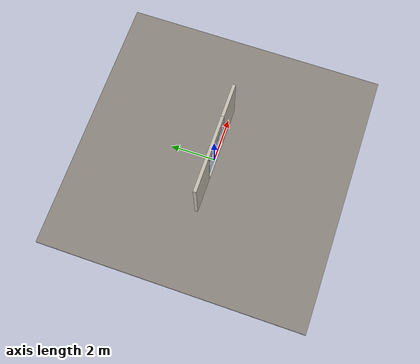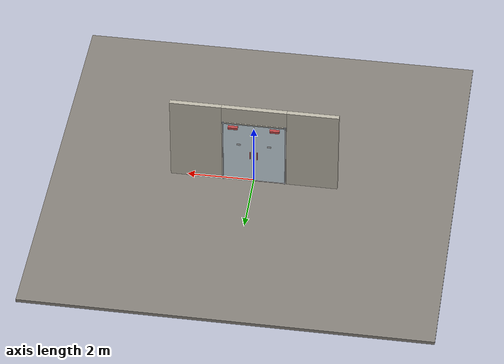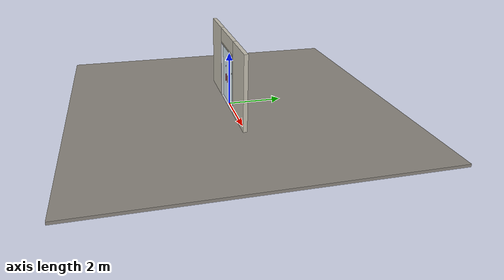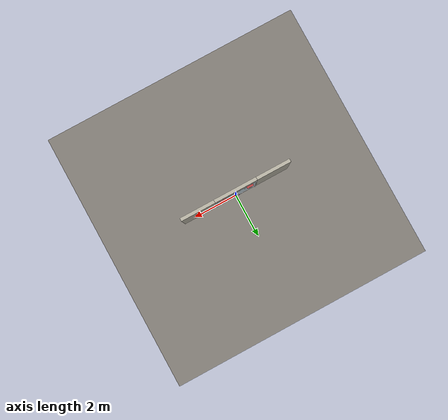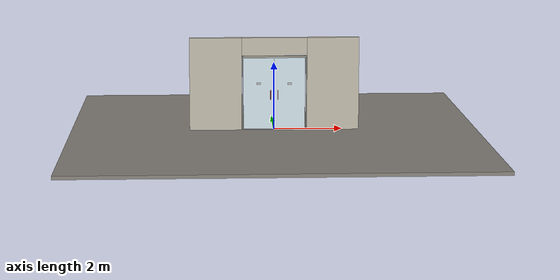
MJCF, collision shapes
<?xml version="1.0" ?>
<mujoco model="db0010_swing_double_full">
  <compiler angle="radian" meshdir="../../hardware" texturedir="../../textures" autolimits="true" inertiafromgeom="false"/>
  <option timestep="0.002" integrator="implicitfast" cone="elliptic" impratio="10" noslip_iterations="3">
    <flag multiccd="enable"/>
  </option>
  <size memory="16M"/>
  <default>
    <geom condim="4" solref="0.005 1" solimp="0.95 0.99 0.001"/>
    <joint solreflimit="0.005 1" solimplimit="0.95 0.99 0.001"/>
    <tendon solreflimit="0.005 1"/>
    <equality solref="0.002 1"/>
  </default>
  <visual>
    <headlight ambient="0.4 0.4 0.4" diffuse="0.7 0.7 0.7" specular="0.2 0.2 0.2"/>
    <quality shadowsize="4096"/>
    <map znear="0.01" zfar="60"/>
  </visual>
  <asset>
    <mesh name="closer_body_fdc4667657" file="closer_body_fdc4667657.obj"/>
    <mesh name="pull_f8d79d6331" file="pull_f8d79d6331.obj"/>
    <material name="mat_floor" rgba="0.55 0.53 0.5 1" specular="0.2" shininess="0.15" reflectance="0"/>
    <material name="mat_wall" rgba="0.78 0.76 0.7 1" specular="0.2" shininess="0.1" reflectance="0"/>
    <material name="mat_leaf_a" rgba="0.85 0.92 0.95 0.25" specular="0.2" shininess="0.95" reflectance="0.1"/>
    <material name="mat_glass_leaf" rgba="0.85 0.92 0.95 0.25" specular="0.2" shininess="0.95" reflectance="0.1"/>
    <material name="mat_patch" rgba="0.75 0.76 0.77 1" specular="0.8" shininess="0.65" reflectance="0.4"/>
    <material name="mat_hinge" rgba="0.65 0.66 0.68 1" specular="0.74" shininess="0.5" reflectance="0.36"/>
    <material name="mat_op_stainless" rgba="0.75 0.76 0.77 1" specular="0.8" shininess="0.65" reflectance="0.4"/>
    <material name="mat_closer" rgba="0.22 0.17 0.13 1" specular="0.8" shininess="0.6" reflectance="0.4"/>
    <material name="mat_sign" rgba="0.75 0.76 0.77 1" specular="0.8" shininess="0.65" reflectance="0.4"/>
    <material name="mat_leaf_b" rgba="0.85 0.92 0.95 0.25" specular="0.2" shininess="0.95" reflectance="0.1"/>
    <material name="mat_frame" rgba="0.8 0.81 0.83 1" specular="0.8" shininess="0.6" reflectance="0.4"/>
    <material name="mat_threshold" rgba="0.8 0.81 0.83 1" specular="0.8" shininess="0.6" reflectance="0.4"/>
    <texture name="skybox" type="skybox" builtin="gradient" rgb1="0.6 0.7 0.85" rgb2="0.9 0.92 0.95" width="256" height="256"/>
  </asset>
  <worldbody>
    <light name="sun" pos="1.5 -2.5 4" dir="-0.3 0.5 -0.8" directional="true" diffuse="0.8 0.8 0.8" specular="0.3 0.3 0.3" castshadow="true"/>
    <light name="fill" pos="-1.5 2.5 3" dir="0.3 -0.5 -0.7" directional="true" diffuse="0.35 0.35 0.4" castshadow="false"/>
    <camera name="robot_view" pos="0 -2.667812 1.812087" xyaxes="1 0 0 0 0.26963 0.962964" fovy="52"/>
    <camera name="far_view" pos="0 2.607813 1.812087" xyaxes="-1 0 0 0 -0.26963 0.962964" fovy="52"/>
    <camera name="iso" pos="-2.004737 -2.245762 2.234138" xyaxes="0.741536 -0.670913 0 0.242917 0.268487 0.932151" fovy="46"/>
    <camera name="detail_handle" pos="0.0735 -0.8975 1.32" xyaxes="0.97561 0.219512 0 -0.070934 0.315262 0.94635" fovy="38"/>
    <geom name="floor" type="box" size="6 6 0.05" pos="0 0 -0.05" material="mat_floor" group="0" contype="1" conaffinity="1" friction="0.8 0.005 0.0001" density="2400"/>
    <geom name="wall_left" type="box" size="0.76825 0.0725 1.3735" pos="-1.73175 -0.03 1.3735" material="mat_wall" group="0" contype="1" conaffinity="1" friction="0.6 0.005 0.0001" density="800"/>
    <geom name="wall_right" type="box" size="0.76825 0.0725 1.3735" pos="1.73175 -0.03 1.3735" material="mat_wall" group="0" contype="1" conaffinity="1" friction="0.6 0.005 0.0001" density="800"/>
    <geom name="wall_header" type="box" size="0.9635 0.0725 0.2625" pos="0 -0.03 2.4845" material="mat_wall" group="0" contype="1" conaffinity="1" friction="0.6 0.005 0.0001" density="800"/>
    <geom name="pivot_bottom_socket" type="box" size="0.035 0.035 0.0125" pos="-0.9155 0.0295 0.0025" material="mat_hinge" group="1" contype="0" conaffinity="0" density="7850"/>
    <geom name="pivot_top_bracket" type="box" size="0.035 0.035 0.0355" pos="-0.9155 0.0295 2.1865" material="mat_hinge" group="1" contype="0" conaffinity="0" density="7850"/>
    <geom name="pivot_bottom_socket_2" type="box" size="0.035 0.035 0.0125" pos="0.9155 0.0295 0.0025" material="mat_hinge" group="1" contype="0" conaffinity="0" density="7850"/>
    <geom name="pivot_top_bracket_2" type="box" size="0.035 0.035 0.0355" pos="0.9155 0.0295 2.1865" material="mat_hinge" group="1" contype="0" conaffinity="0" density="7850"/>
    <geom name="jamb_l" type="box" size="0.0095 0.0725 1.0735" pos="-0.928 -0.03 1.0735" material="mat_frame" group="0" contype="1" conaffinity="1" friction="0.6 0.005 0.0001" density="300"/>
    <geom name="jamb_r" type="box" size="0.0095 0.0725 1.0735" pos="0.928 -0.03 1.0735" material="mat_frame" group="0" contype="1" conaffinity="1" friction="0.6 0.005 0.0001" density="300"/>
    <geom name="jamb_head" type="box" size="0.9375 0.0725 0.0095" pos="0 -0.03 2.1565" material="mat_frame" group="0" contype="1" conaffinity="1" friction="0.6 0.005 0.0001" density="300"/>
    <geom name="head_stud" type="box" size="0.9375 0.0725 0.015" pos="0 -0.03 2.181" material="mat_wall" group="0" contype="1" conaffinity="1" friction="0.6 0.005 0.0001" density="500"/>
    <geom name="threshold" type="box" size="0.9375 0.0725 0.0065" pos="0 -0.03 0.0065" material="mat_threshold" group="0" contype="1" conaffinity="1" friction="0.5 0.005 0.0001" density="2700"/>
    <site name="approach_point" pos="0 -1.5 0" quat="1 0 0 0" size="0.05" rgba="0.2 0.9 0.2 0.5" group="4"/>
    <site name="goal_point" pos="0 1.5 0" quat="1 0 0 0" size="0.05" rgba="0.2 0.9 0.2 0.5" group="4"/>
    <site name="door_plane_center" pos="0 0 1.0735" quat="1 0 0 0" size="0.02" rgba="0.2 0.9 0.2 0.5" group="4"/>
    <site name="approach_point_2" pos="0 -1.5 0" quat="1 0 0 0" size="0.05" rgba="0.2 0.9 0.2 0.5" group="4"/>
    <site name="goal_point_2" pos="0 1.5 0" quat="1 0 0 0" size="0.05" rgba="0.2 0.9 0.2 0.5" group="4"/>
    <site name="door_plane_center_2" pos="0 0 1.0735" quat="1 0 0 0" size="0.02" rgba="0.2 0.9 0.2 0.5" group="4"/>
    <site name="approach_point_3" pos="0 -1.5 0" quat="1 0 0 0" size="0.05" rgba="0.2 0.9 0.2 0.5" group="4"/>
    <site name="goal_point_3" pos="0 1.5 0" quat="1 0 0 0" size="0.05" rgba="0.2 0.9 0.2 0.5" group="4"/>
    <site name="door_plane_center_3" pos="0 0 1.0735" quat="1 0 0 0" size="0.02" rgba="0.2 0.9 0.2 0.5" group="4"/>
    <body name="leaf_a" pos="-0.9185 0 0">
      <inertial pos="0.444495 0.011461 1.232074" mass="98.253242" quat="-0.474652 0.494374 0.515647 0.514207" diaginertia="6.298386655 42.694741141 48.805970347"/>
      <joint name="leaf_a_hinge" type="hinge" axis="0 0 1" pos="0.003 0.0295 0" limited="true" range="0 1.745329" solreflimit="0.02 1" damping="12.268966" frictionloss="2.144662" stiffness="31.258031" springref="-2.073067" armature="0.02"/>
      <geom name="leaf_a_glass" type="box" size="0.4555 0.0225 1.063" pos="0.4615 0 1.08" material="mat_glass_leaf" group="0" contype="1" conaffinity="1" friction="0.4 0.005 0.0001" density="1"/>
      <geom name="pivot_bottom" type="cylinder" size="0.014 0.004" pos="0.003 0.0295 0.012" material="mat_hinge" group="1" contype="0" conaffinity="0" density="7850"/>
      <geom name="pivot_top" type="cylinder" size="0.014 0.004" pos="0.003 0.0295 2.147" material="mat_hinge" group="1" contype="0" conaffinity="0" density="7850"/>
      <geom name="leaf_a_pull_n" type="mesh" mesh="pull_f8d79d6331" pos="0.812 -0.0225 1.04" quat="0.707107 0.707107 0 0" material="mat_op_stainless" group="1" contype="0" conaffinity="0" density="3000"/>
      <geom name="leaf_a_pull_col_n" type="capsule" size="0.0125 0.13" pos="0.812 -0.0975 1.04" material="mat_op_stainless" group="3" contype="1" conaffinity="1" rgba="0.8 0.3 0.3 0.25" friction="0.7 0.01 0.0001" density="3000"/>
      <geom name="leaf_a_pull_p" type="mesh" mesh="pull_f8d79d6331" pos="0.812 0.0225 1.04" quat="-0.707107 0.707107 0 0" material="mat_op_stainless" group="1" contype="0" conaffinity="0" density="3000"/>
      <geom name="leaf_a_pull_col_p" type="capsule" size="0.0125 0.13" pos="0.812 0.0975 1.04" material="mat_op_stainless" group="3" contype="1" conaffinity="1" rgba="0.8 0.3 0.3 0.25" friction="0.7 0.01 0.0001" density="3000"/>
      <geom name="closer_body" type="mesh" mesh="closer_body_fdc4667657" pos="0.3 0.0225 2.046" quat="-0.707107 0.707107 0 0" material="mat_closer" group="1" contype="0" conaffinity="0" density="2000"/>
      <geom name="closer_body_col" type="box" size="0.145 0.05 0.035" pos="0.3 0.0725 2.046" material="mat_closer" group="3" contype="1" conaffinity="1" rgba="0.8 0.3 0.3 0.25" friction="0.6 0.005 0.0001" density="2000"/>
      <geom name="sign_push" type="box" size="0.06 0.001 0.03" pos="0.4615 -0.0235 1.367" material="mat_sign" group="2" contype="0" conaffinity="0" density="7900"/>
      <geom name="sign_pull" type="box" size="0.06 0.001 0.03" pos="0.4615 0.0235 1.367" material="mat_sign" group="2" contype="0" conaffinity="0" density="7900"/>
      <site name="leaf_a_pull_grip_n" pos="0.812 -0.0975 1.04" quat="1 0 0 0" size="0.012" rgba="0.2 0.9 0.2 0.5" group="4"/>
      <site name="leaf_a_pull_grip_p" pos="0.812 0.0975 1.04" quat="1 0 0 0" size="0.012" rgba="0.2 0.9 0.2 0.5" group="4"/>
      <site name="leaf_a_edge_mid" pos="0.917 0 1.063" quat="1 0 0 0" size="0.02" rgba="0.2 0.9 0.2 0.5" group="4"/>
    </body>
    <body name="leaf_b" pos="0.9185 0 0">
      <inertial pos="-0.444495 0.011461 1.232074" mass="98.253242" quat="0.514207 -0.515647 -0.494374 -0.474652" diaginertia="6.298386655 42.694741141 48.805970347"/>
      <joint name="leaf_b_hinge" type="hinge" axis="0 0 -1" pos="-0.003 0.0295 0" limited="true" range="0 1.745329" solreflimit="0.02 1" damping="12.268966" frictionloss="2.144662" stiffness="31.258031" springref="-2.073067" armature="0.02"/>
      <geom name="leaf_b_glass" type="box" size="0.4555 0.0225 1.063" pos="-0.4615 0 1.08" material="mat_glass_leaf" group="0" contype="1" conaffinity="1" friction="0.4 0.005 0.0001" density="1"/>
      <geom name="pivot_bottom_2" type="cylinder" size="0.014 0.004" pos="-0.003 0.0295 0.012" material="mat_hinge" group="1" contype="0" conaffinity="0" density="7850"/>
      <geom name="pivot_top_2" type="cylinder" size="0.014 0.004" pos="-0.003 0.0295 2.147" material="mat_hinge" group="1" contype="0" conaffinity="0" density="7850"/>
      <geom name="leaf_b_pull_n" type="mesh" mesh="pull_f8d79d6331" pos="-0.812 -0.0225 1.04" quat="0 0 -0.707107 0.707107" material="mat_op_stainless" group="1" contype="0" conaffinity="0" density="3000"/>
      <geom name="leaf_b_pull_col_n" type="capsule" size="0.0125 0.13" pos="-0.812 -0.0975 1.04" material="mat_op_stainless" group="3" contype="1" conaffinity="1" rgba="0.8 0.3 0.3 0.25" friction="0.7 0.01 0.0001" density="3000"/>
      <geom name="leaf_b_pull_p" type="mesh" mesh="pull_f8d79d6331" pos="-0.812 0.0225 1.04" quat="0 0 0.707107 0.707107" material="mat_op_stainless" group="1" contype="0" conaffinity="0" density="3000"/>
      <geom name="leaf_b_pull_col_p" type="capsule" size="0.0125 0.13" pos="-0.812 0.0975 1.04" material="mat_op_stainless" group="3" contype="1" conaffinity="1" rgba="0.8 0.3 0.3 0.25" friction="0.7 0.01 0.0001" density="3000"/>
      <geom name="closer_body_2" type="mesh" mesh="closer_body_fdc4667657" pos="-0.3 0.0225 2.046" quat="0 0 0.707107 0.707107" material="mat_closer" group="1" contype="0" conaffinity="0" density="2000"/>
      <geom name="closer_body_col_2" type="box" size="0.145 0.05 0.035" pos="-0.3 0.0725 2.046" material="mat_closer" group="3" contype="1" conaffinity="1" rgba="0.8 0.3 0.3 0.25" friction="0.6 0.005 0.0001" density="2000"/>
      <geom name="sign_push_2" type="box" size="0.06 0.001 0.03" pos="-0.4615 -0.0235 1.367" material="mat_sign" group="2" contype="0" conaffinity="0" density="7900"/>
      <geom name="sign_pull_2" type="box" size="0.06 0.001 0.03" pos="-0.4615 0.0235 1.367" material="mat_sign" group="2" contype="0" conaffinity="0" density="7900"/>
      <site name="leaf_b_pull_grip_n" pos="-0.812 -0.0975 1.04" quat="1 0 0 0" size="0.012" rgba="0.2 0.9 0.2 0.5" group="4"/>
      <site name="leaf_b_pull_grip_p" pos="-0.812 0.0975 1.04" quat="1 0 0 0" size="0.012" rgba="0.2 0.9 0.2 0.5" group="4"/>
      <site name="leaf_b_edge_mid" pos="-0.917 0 1.063" quat="1 0 0 0" size="0.02" rgba="0.2 0.9 0.2 0.5" group="4"/>
    </body>
  </worldbody>
  <sensor>
    <jointpos name="leaf_a_hinge_pos" joint="leaf_a_hinge"/>
    <jointvel name="leaf_a_hinge_vel" joint="leaf_a_hinge"/>
    <jointpos name="leaf_b_hinge_pos" joint="leaf_b_hinge"/>
    <jointvel name="leaf_b_hinge_vel" joint="leaf_b_hinge"/>
  </sensor>
</mujoco>
